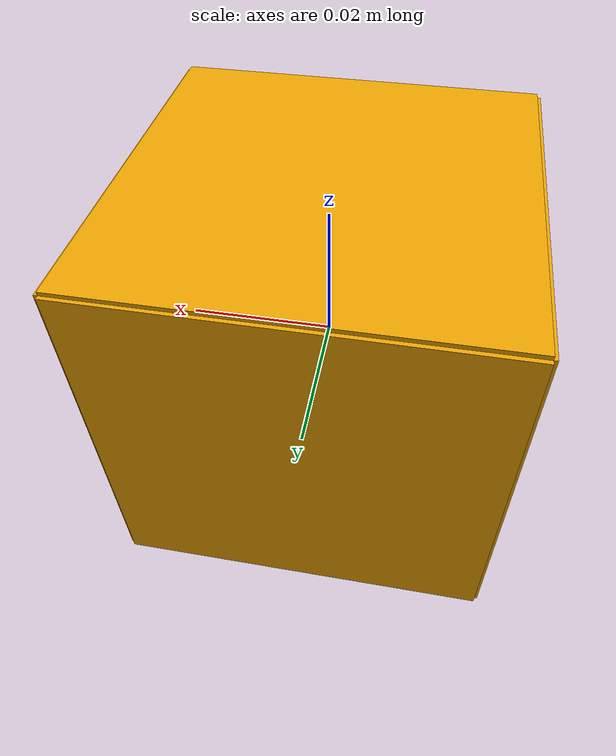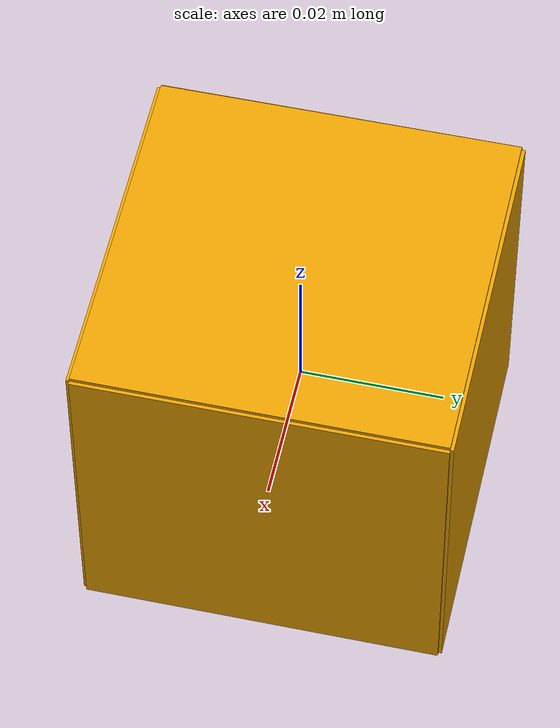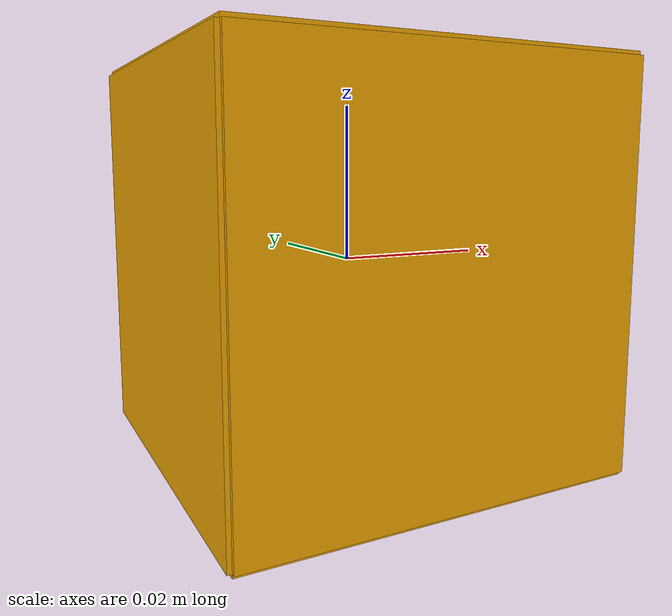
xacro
<?xml version="4.0"?>

<robot xmlns:xacro="http://www.ros.org/wiki/xacro">
    <xacro:include filename="$(find braccio_arm_gazebo)/urdf/cube.xacro" />
    <link name="my_box">
        <aruco_cube t1="140" t2="141" t3="142" t4="143" t5="144" t6="145" dim="0.05" m="0.05"/>
    </link>
    <gazebo reference="my_box">
    <mu1>100.0</mu1>
    <mu2>100.0</mu2>
    <minDepth>0.003</minDepth>
    <maxVel>0</maxVel>
    </gazebo>
</robot>

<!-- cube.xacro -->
<robot xmlns:xacro="http://www.ros.org/wiki/xacro">
 <xacro:macro name="aruco_cube" params="t1 t2 t3 t4 t5 t6 dim m ">
   <inertial>
      <origin xyz="0 0 0" />
      <mass value="${m}" />
      <inertia  ixx="${m*m/12.0}" ixy="0.0"  ixz="0.0"  iyy="${m*m/12.0}"  iyz="0.0"  izz="${m*m/12.0}" />
    </inertial>
    <visual>
      <origin xyz="${dim/2.0} 0 -${dim/2.0}"/>
      <geometry>
        <mesh filename="package://braccio_arm_gazebo/urdf/marker${t1}/meshes/Marker${t1}.dae" scale="${2.0*dim} ${2.0*dim} ${2.0*dim}"/>
      </geometry>
    </visual>
   <visual>
      <geometry>
        <mesh filename="package://braccio_arm_gazebo/urdf/marker${t2}/meshes/Marker${t2}.dae" scale="${2.0*dim} ${2.0*dim} ${2.0*dim}"/>
      </geometry>
        <origin xyz="0 ${dim/2.0} -${dim/2.0}"  rpy="0 0 1.57"/>
    </visual>
    <visual>
      <geometry>
        <mesh filename="package://braccio_arm_gazebo/urdf/marker${t3}/meshes/Marker${t3}.dae" scale="${2.0*dim} ${2.0*dim} ${2.0*dim}"/>
      </geometry>
        <origin xyz="-${dim/2.0} 0 -${dim/2.0}"  rpy="0 0 3.14"/>
    </visual>
   <visual>
      <geometry>
        <mesh filename="package://braccio_arm_gazebo/urdf/marker${t4}/meshes/Marker${t4}.dae" scale="${2.0*dim} ${2.0*dim} ${2.0*dim}"/>
      </geometry>
        <origin xyz="0 -${dim/2.0} -${dim/2.0}"  rpy="0 0 -1.57"/>
    </visual>
    <visual>
      <geometry>
        <mesh filename="package://braccio_arm_gazebo/urdf/marker${t5}/meshes/Marker${t5}.dae" scale="${2.0*dim} ${2.0*dim} ${2.0*dim}"/>
      </geometry>
        <origin xyz="-${dim/2.0} 0 -${dim/2.0}"  rpy="0 1.57 0"/>
    </visual>
    <visual>
      <geometry>
        <mesh filename="package://braccio_arm_gazebo/urdf/marker${t6}/meshes/Marker${t6}.dae" scale="${2.0*dim} ${2.0*dim} ${2.0*dim}"/>
      </geometry>
        <origin xyz="${dim/2.0} 0 ${dim/2.0}"  rpy="0 -1.57 0"/>
    </visual>
    <collision>
      <geometry>
        <box size="${dim} ${dim} ${dim}" />
      </geometry>
    </collision>
</xacro:macro>
</robot>
